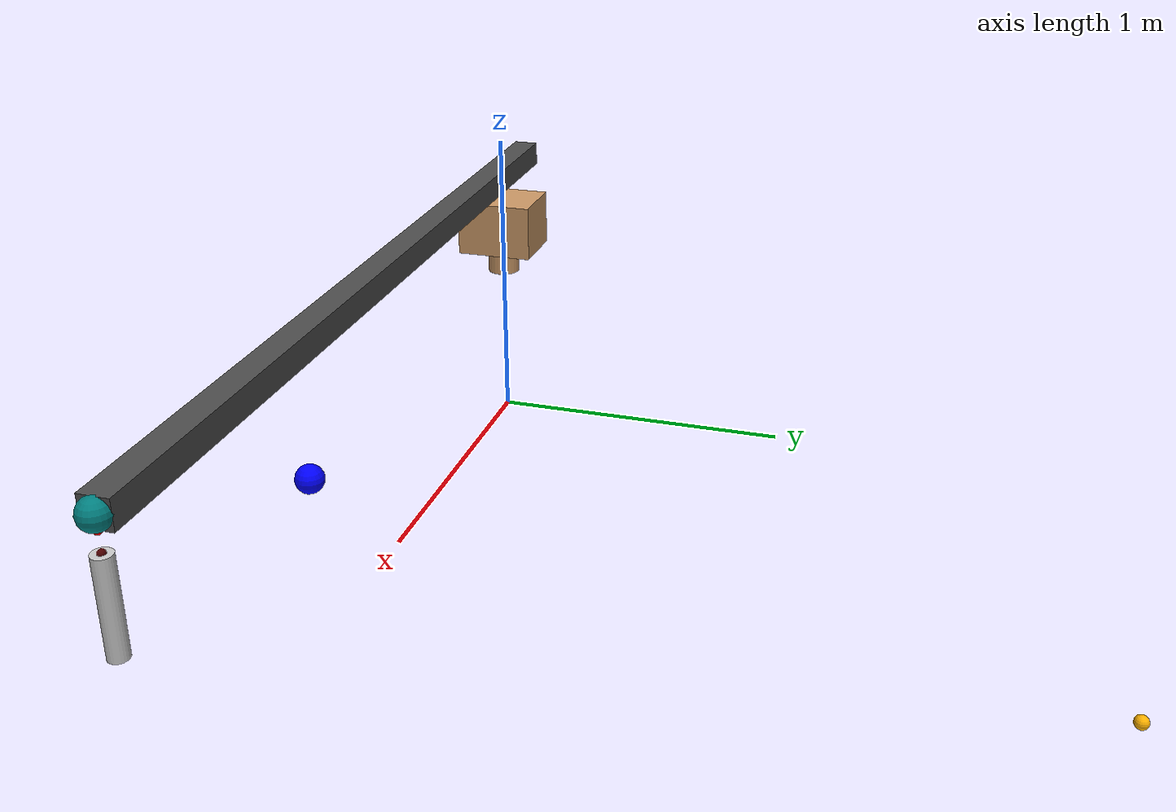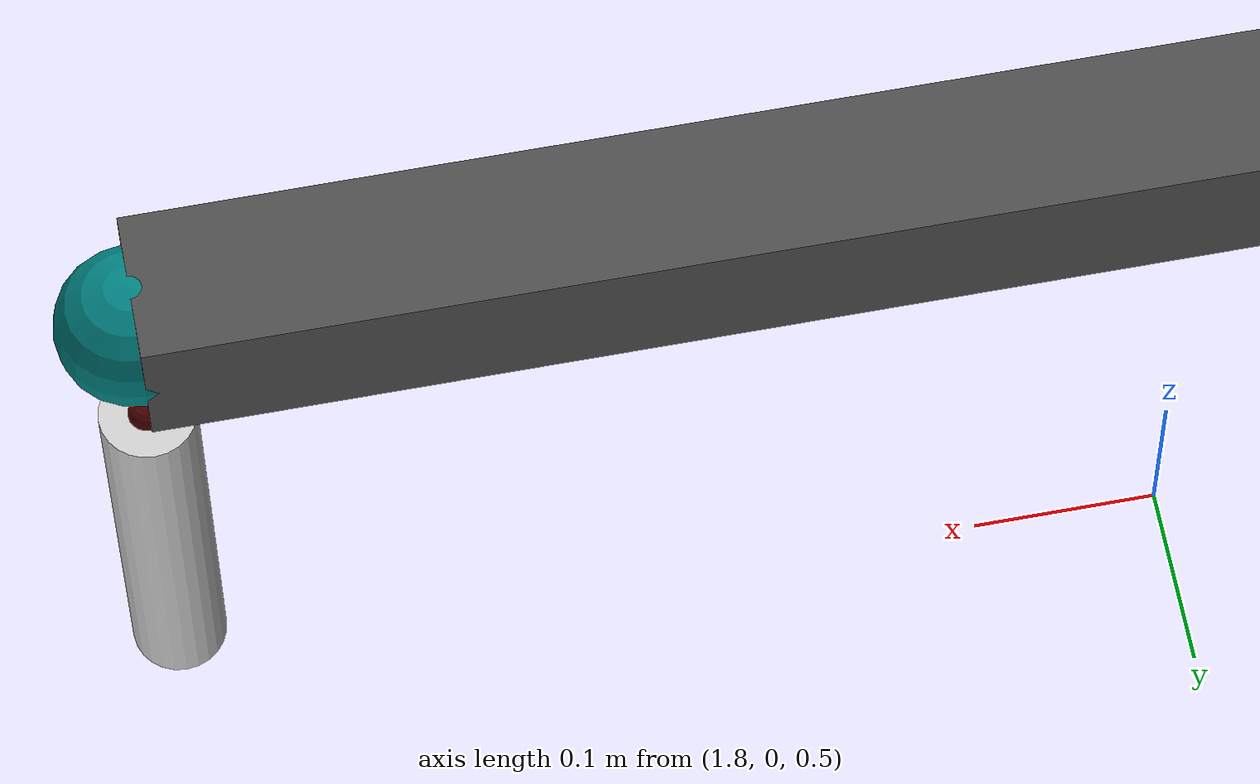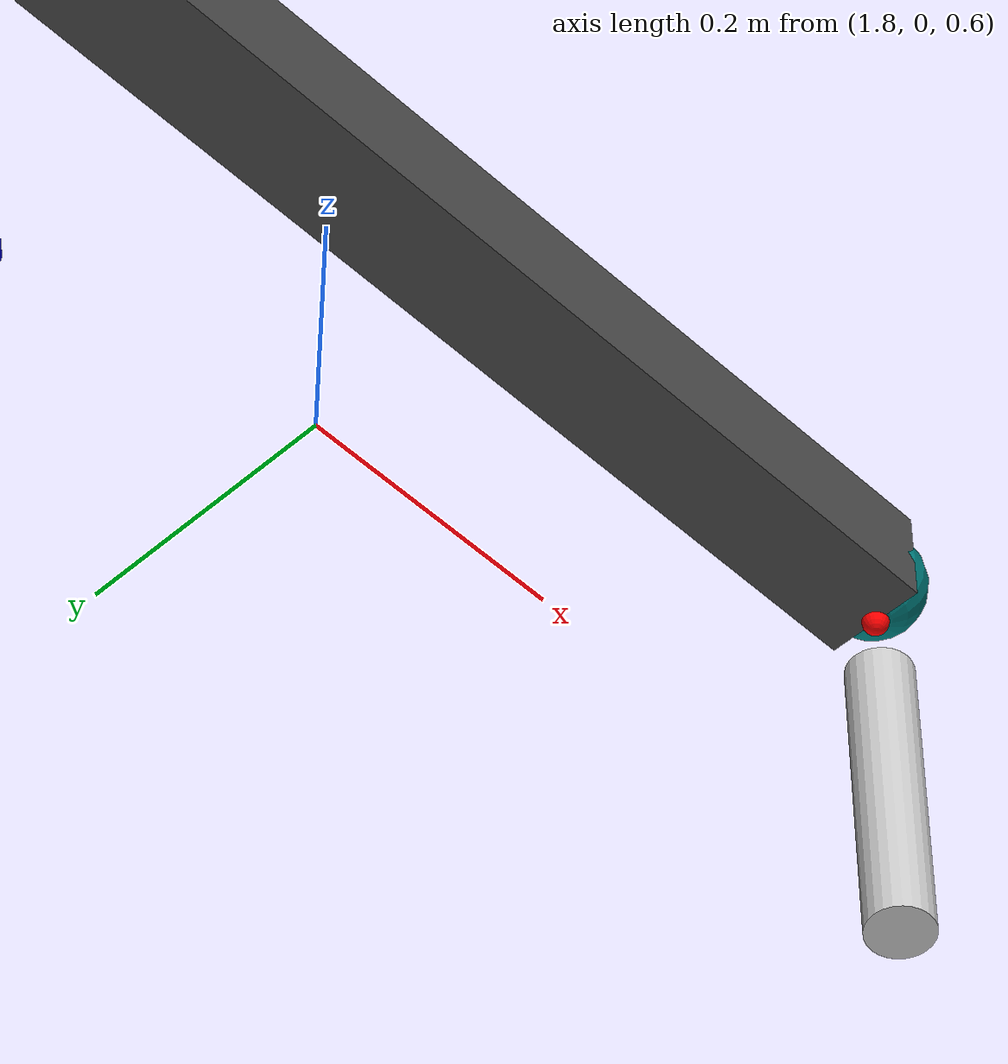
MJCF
<mujoco model="Moving Crane">
  <include file="../common.xml"/>
  <!-- include file="crane_free_joint_copy.xml" / -->
  <include file="ic_optimized_physical.xml" />

  <!-- set userdata =model.nv+model.nq for storeing qpos and qvel from ROS-->
  <!-- add three more userdata for payload tip x, y z acc, i.e. 14+3 -->
  <size memory="1M" nuserdata="17"/>

  <custom>
    <!-- agent -->
    <!-- 0: predictive sampling 5: CEM -->
    <numeric name="agent_planner" data="5" />
    <numeric name="agent_horizon" data="0.8" />
    <numeric name="agent_timestep" data="0.01" />
    <numeric name="agent_policy_width" data="0.0035" />
    <numeric name="sampling_spline_points" data="4" />
    <numeric name="sampling_exploration" data="0.1" />
    <numeric name="sampling_trajectories" data="20" />
    <numeric name="sampling_representation" data="0" />
    <!-- parameter -->
    <numeric name="residual_ViconX" data="1.12 -1.5 1.5" />
    <numeric name="residual_ViconY" data="0 -1.5 1.5" />
    <numeric name="residual_ViconZ" data="0.936 0.0 2.0" />
    <numeric name="residual_GoalX" data="0.8 -2 2" />
    <numeric name="residual_GoalY" data="0.4 -2 2" />
    <numeric name="residual_GoalZ" data="0.6 0.0 2" />
    <!-- estimator -->
    <!-- cause serious rollout divergence -->
    <numeric name="estimator" data="0" />
    <numeric name="estimator_sensor_start" data="4" />
    <numeric name="estimator_number_sensor" data="1" />
    <numeric name="estimator_timestep" data="0.004" />

  </custom>

  <worldbody>

    <!-- define a yellow target for crane's payload to follow -->
    <body name="target" mocap="true" pos="1.5 0 0.5">
      <geom name="target" type="sphere" size="0.04" rgba="0 0 1 1"/>
    </body>

  </worldbody>

  <contact>
        <exclude name="target_hit_paylaod" body1="target" body2="payload"/>
        <!-- exclude name="target_hit_paylaod_connector" body1="target" body2="payload_connector"/ -->
        <exclude name="target_hit_boom" body1="target" body2="boom"/>

  </contact>

  <sensor>
    <!-- cost -->
    <user name="Distance" dim="1" user="2 1200 0 5000 0.04" />
    <user name="Sway_Angle" dim="1" user="2 4800 500 8000 0.04"/>
     <user name="KE" dim="1" user="2 0 0 100 0.04"/>
    <user name="Control" dim="2" user="0 20 0.0 100.0"/>
    <!-- user name="Control_Luff" dim="1" user="0 0.01 0.0 1.0"/ -->
    <!-- user name="Boom_Tip_Angle" dim="1" user="2 1500 500 10000 0.04"/ -->
    <!-- acceleration is too fuzzy and causes blow up of cost values-->
    <!-- user name="Payload_Acc" dim="3" user="0 1000 1000 10000"/ -->

    <!-- estimator sensor-->
    <jointpos name="4" joint="hoist-slider"/>

    <!-- trace -->
    <framepos name="trace0" objtype="site" objname="p_cg"/>

    <!-- residual -->
    <force name="btip_force"  site="b_tip"/>
    <force name="btip_torque"  site="b_tip"/>
    <framepos name="b_tip_pos" objtype="site" objname="b_tip"/>
    <framelinvel name="boom_vel" objtype="site" objname="b_tip"/>
    <framequat name="b_tip_quat" objtype="site" objname="p_cg"/>
    <framepos name="p_pos" objtype="site" objname="p_cg"/>
    <framepos name="p_tip" objtype="site" objname="p_tip"/>
    <framelinacc name="p_acc" objtype="body" objname="payload"/>
  </sensor>

    <!-- good planner parameter for laptop -->

</mujoco>

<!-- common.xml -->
<mujoco>

    <visual>
        <headlight ambient=".4 .4 .4" diffuse=".8 .8 .8" specular="0.1 0.1 0.1"/>
        <map znear=".01"/>
        <quality shadowsize="2048"/>
        <global elevation="-15"/>
    </visual>

    <asset>
        <texture name="blue_grid" type="2d" builtin="checker" rgb1=".02 .14 .44" rgb2=".27 .55 1" width="300" height="300" mark="edge" markrgb="1 1 1"/>
        <material name="blue_grid" texture="blue_grid" texrepeat="1 1" texuniform="true" reflectance=".2"/>

        <texture name="grey_grid" type="2d" builtin="checker" rgb1=".26 .26 .26" rgb2=".6 .6 .6" width="300" height="300" mark="edge" markrgb="1 1 1"/>
        <material name="grey_grid" texture="grey_grid" texrepeat="1 1" texuniform="true" reflectance=".2"/>
        <texture name="skybox" type="skybox" builtin="gradient" rgb1=".66 .79 1" rgb2=".9 .91 .93" width="800" height="800"/>

        <material name="self" rgba=".7 .5 .3 1"/>
        <material name="self_default" rgba=".7 .5 .3 1"/>
        <material name="self_highlight" rgba="0 .5 .3 1"/>
        <material name="effector" rgba=".7 .4 .2 1"/>
        <material name="effector_default" rgba=".7 .4 .2 1"/>
        <material name="effector_highlight" rgba="0 .5 .3 1"/>
        <material name="decoration" rgba=".2 .6 .3 1"/>
        <material name="eye" rgba="0 .2 1 1"/>
        <material name="target" rgba=".6 .3 .3 1"/>
        <material name="target_default" rgba=".6 .3 .3 1"/>
        <material name="target_highlight" rgba=".6 .3 .3 .4"/>
        <material name="site" rgba=".5 .5 .5 .3"/>
    </asset>

    <size memory="1M"/>

    <statistic extent="0.4" center="0.3 0.1 0"/>

    <visual>
        <quality shadowsize="8192"/>
        <global azimuth="180" elevation="-30"/>
    </visual>

    <default>
        <geom friction="1.0"/>
    </default>

    <compiler angle="radian" autolimits="true"/>

    <asset>
        <mesh name="apple" file="../../shared_assets/apple/apple.obj" />
        <mesh name="apple_contact0" file="../../shared_assets/apple/contact0.stl"  />
        <mesh name="apple_contact1" file="../../shared_assets/apple/contact1.stl"  />

        <mesh name="doorknob" file="../../shared_assets/doorknob/doorknob.obj" />

        <mesh name="flashlight" file="../../shared_assets/flashlight/flashlight.obj" />
        <mesh name="flashlight_contact0" file="../../shared_assets/flashlight/contact0.stl"  />
        <mesh name="flashlight_contact1" file="../../shared_assets/flashlight/contact1.stl"  />

        <mesh name="hammer" file="../../shared_assets/hammer/hammer.obj" />
        <mesh name="hammer_contact0" file="../../shared_assets/hammer/contact0.stl"  />
        <mesh name="hammer_contact1" file="../../shared_assets/hammer/contact1.stl"  />

        <mesh name="phone" file="../../shared_assets/phone/phone.obj" />
        <mesh name="phone_contact0" file="../../shared_assets/phone/contact0.stl"  />
        <mesh name="phone_contact1" file="../../shared_assets/phone/contact1.stl"  />
        <mesh name="phone_contact2" file="../../shared_assets/phone/contact2.stl"  />

        <mesh name="stapler" file="../../shared_assets/stapler/stapler.obj" />
        <mesh name="stapler_contact0" file="../../shared_assets/stapler/contact0.stl"  />
        <mesh name="stapler_contact1" file="../../shared_assets/stapler/contact1.stl"  />
        <mesh name="stapler_contact2" file="../../shared_assets/stapler/contact2.stl"  />
        <mesh name="stapler_contact3" file="../../shared_assets/stapler/contact3.stl"  />
        <mesh name="stapler_contact4" file="../../shared_assets/stapler/contact4.stl"  />

        <mesh name="waterbottle" file="../../shared_assets/waterbottle/waterbottle.obj" />
        <mesh name="waterbottle_contact0" file="../../shared_assets/waterbottle/contact0.stl"  />
        <mesh name="waterbottle_contact1" file="../../shared_assets/waterbottle/contact1.stl"  />
    </asset>

</mujoco>

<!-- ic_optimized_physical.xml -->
<mujoco>
  <option integrator="implicitfast" timestep="0.01">
    <flag energy="enable" warmstart="enable" contact="disable"/>
  </option>

  <compiler autolimits="true" angle="radian"/>

  <worldbody>
    <light diffuse=".75 .75 .75" pos="0 0 10" dir="0 0 -1" castshadow="false"/>
    <!-- geom type="plane" size="5 5 0.1" rgba=".7 .7 .6 1"/ -->

    <body name="base" pos="0 0 0.572" euler="0 0 0" gravcomp="1" >
      <site name="base_imu" pos="0 0 0" size="0.01" />

     <geom name="base_geom"  type="cylinder" size="0.054 0.042 " rgba=".8 .6 .4 1" mass="6.0"/>

      <body name="cab" pos="0 0 0.134" gravcomp="1">
        <joint name="slew-joint" type="hinge" axis="0 0 1" pos="0 0 -.092" range="-1.3 1.3" armature="0.0" damping="0.0"/>
        <geom name="cab_geom" type="box" size=".100 .128 .092" rgba=".8 .6 .4 1" mass="7.8"/>

        <site name="cab_imu" pos="0 0 0" size="0.01" />

        <body name="boom" pos="1.0347 0 .179" gravcomp="1">
          <joint name="luff-joint" type="hinge" pos="-1.0392 0 -.179" axis="0 -1 0" range="0.001 1.2" armature="7110.0" damping="0.4454"/>
          <geom name="boom_geom" type="box" size="1.3017 .039 .039" rgba=".3 .3 .3 1"  mass="1.834"/>
          <geom name="front_pulley_geom" pos="1.3017 0 0" type="sphere" size="0.04" rgba="0 .5 .5 1" mass="0.380"/>
          <site name="boom_imu" pos="0 0 0" size="0.01" />
            <!-- hoist_module -->
          <site name="b_tip" pos="1.3017 0 -.039" rgba="1 0 0 1" size="0.01" />

          <body name="boom_tip" pos="1.3017 0 -.039" gravcomp="1">
            <geom name="boom_tip_geom" pos="0 0 0" type="sphere" size="0.01" rgba=".3 .3 .3 1" mass="0.00001"/>

            <joint name="boom-tip-beta-hinge" type="hinge" axis="1 0 0" range="-1.5 1.5" damping="0.3014" armature="6.061e-11"/>
            <joint name="boom-tip-phi-hinge" type="hinge" axis="0 1 0" range="-1.5 1.5" damping="0.3014" armature="6.061e-11"/>
            <joint name="hoist-slider" type="slide" axis="0 0 -1" range="0.07 2.0" armature="144.1" damping="1.373e-15"/>

            <body name="payload_tip" pos="0 0 -.0535">
              <geom name="p_tip_geom" type="sphere" size="0.01" rgba=".3 0 0 1" mass="0.0000000001" contype="0" conaffinity="0"/>
              <site name="p_tip" pos="0 0 0" size="0.01" rgba="1 0 0 1" />

              <joint name="p-tip-eta-hinge" type="hinge" axis="1 0 0" damping="0.0001" limited="true" range="-1.5 1.5"/>
              <joint name="p-tip-sigma-hinge" type="hinge" axis="0 1 0" damping="0.0001" limited="true" range="-1.5 1.5"/>

              <body name="payload" pos="0 0 0">
                <geom name="payload_geom" pos="0 0 -0.125" type="cylinder" size="0.025 0.125" rgba=".8 .8 .8 1" mass="0.2"/>
                <site name="p_cg" pos="0 0 -0.125"/>
                                <!-- site name="payload_bottom" pos="0 0 -0.4572" size="0.01" rgba="0 1 0 1" / -->
              </body> <!-- payload -->
            </body> <!-- paylaod connector -->
          </body> <!-- boom tip -->
        </body> <!-- boom -->
      </body> <!-- cab -->

    </body> <!-- base -->

    <!-- place vicon mocap under the base of the crane, on the motion platform-->
   <body name="vicon" mocap="true" pos="2 2 0.564">
      <geom name="vicon_geom" type="sphere" size="0.015" rgba="1 0.7 0 1" condim="1"/>
      <site name="vicon_marker" pos="0 0 0"/>
    </body> <!-- vicon -->

  </worldbody>

  <actuator>
      <velocity name="slew-velocity" joint="slew-joint" ctrlrange="-.7854 .7854" kv="3000.0"/>
      <velocity name="luff-velocity" joint="luff-joint" ctrlrange="-.2618 .2618" kv="14020.0"/>
      <velocity name="hoist-velocity" joint="hoist-slider" ctrlrange="-.8 .8" kv="586.0"/>

  </actuator>

</mujoco>
